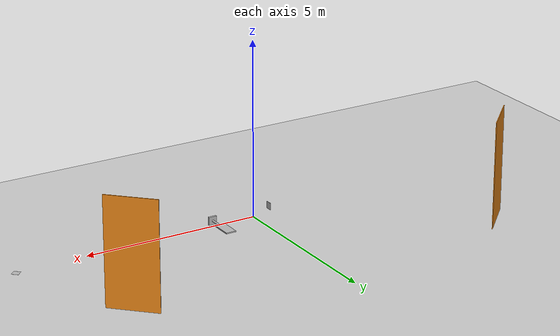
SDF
<?xml version='1.0' encoding='utf-8'?>
<sdf version="1.5">
  <world name="default">
    <include>
      <uri>model://sun</uri>
    </include>
    <include>
      <uri>model://ground_plane</uri>
      <pose>0 0 -0.001 0 0 0</pose>
    </include>
    <include>
      <uri>model://marker_aruco-1</uri>
      <pose frame="''">-0.01 0.78 0.61 0.0 -1.57079632679 0.0</pose>
    </include>
    <include>
      <uri>model://marker_aruco-2</uri>
      <pose frame="''">7.0 0.0 0.0 0.0 0.0 0.785398163397</pose>
    </include>
    <include>
      <uri>model://marker_aruco-2</uri>
      <pose frame="''">7.0 0.0 0.0 0.0 0.0 0.785398163397</pose>
    </include>
    <model name="wall_0">
      <pose frame="''">0 0 0 0 0 0</pose>
      <link name="link_0">
        <pose frame="">0 0 0 0 0 0</pose>
        <gravity>0</gravity>
        <self_collide>0</self_collide>
        <kinematic>1</kinematic>
        <visual name="wall_0_visual_0">
          <pose frame="">5.5 3.5 1.5 0 0 2.35619449019</pose>
          <geometry>
            <box>
              <size>1.41421356237 0.02 3.0</size>
            </box>
          </geometry>
          <material>
            <script>
              <uri>file://media/materials/scripts/gazebo.material</uri>
              <name>Gazebo/Orange</name>
            </script>
          </material>
          <cast_shadows>1</cast_shadows>
          <transparency>0</transparency>
        </visual>
        <collision name="wall_0_collision_0">
          <pose frame="">5.5 3.5 1.5 0 0 2.35619449019</pose>
          <geometry>
            <box>
              <size>1.41421356237 0.02 3.0</size>
            </box>
          </geometry>
        </collision>
      </link>
    </model>
    <model name="wall_1">
      <pose frame="''">0 0 0 0 0 0</pose>
      <link name="link_0">
        <pose frame="">0 0 0 0 0 0</pose>
        <gravity>0</gravity>
        <self_collide>0</self_collide>
        <kinematic>1</kinematic>
        <visual name="wall_1_visual_0">
          <pose frame="">-5.5 3.5 1.5 0 0 -2.35619449019</pose>
          <geometry>
            <box>
              <size>1.41421356237 0.02 3.0</size>
            </box>
          </geometry>
          <material>
            <script>
              <uri>file://media/materials/scripts/gazebo.material</uri>
              <name>Gazebo/Orange</name>
            </script>
          </material>
          <cast_shadows>1</cast_shadows>
          <transparency>0</transparency>
        </visual>
        <collision name="wall_1_collision_0">
          <pose frame="">-5.5 3.5 1.5 0 0 -2.35619449019</pose>
          <geometry>
            <box>
              <size>1.41421356237 0.02 3.0</size>
            </box>
          </geometry>
        </collision>
      </link>
    </model>
    <include>
      <uri>model://sign_stop</uri>
      <pose frame="''">1.77 1.05 0.6 0.0 -1.57079632679 0.0</pose>
    </include>
    <physics default="0" name="default_physics" type="ode">
      <gravity>0 0 -9.8066</gravity>
      <ode>
        <solver>
          <type>quick</type>
          <iters>20</iters>
          <sor>1.3</sor>
          <use_dynamic_moi_rescaling>0</use_dynamic_moi_rescaling>
        </solver>
        <constraints>
          <cfm>0</cfm>
          <erp>0.2</erp>
          <contact_max_correcting_vel>100</contact_max_correcting_vel>
          <contact_surface_layer>0.001</contact_surface_layer>
        </constraints>
      </ode>
      <max_step_size>0.002</max_step_size>
      <real_time_factor>1</real_time_factor>
      <real_time_update_rate>500</real_time_update_rate>
      <magnetic_field>6e-06 2.3e-05 -4.2e-05</magnetic_field>
    </physics>
  </world>
</sdf>

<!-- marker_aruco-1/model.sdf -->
<sdf version="1.5">
  <model name="marker_aruco-1">
    <pose frame="">0 0 0 0 0 0</pose>
    <link name="link_0">
      <pose frame="">0 0 0 0 0 0</pose>
      <visual name="visual">
        <geometry>
          <box>
            <size>0.197 0.197 1e-5</size>
          </box>
        </geometry>
        <material>
          <script>
            <uri>model://marker_aruco-1/materials/scripts</uri>
            <uri>model://marker_aruco-1/materials/textures</uri>
            <name>marker_aruco-1/marker</name>
          </script>
        </material>
        <pose frame="">0 0 0.001 0 0 0</pose>
        <cast_shadows>1</cast_shadows>
        <transparency>0</transparency>
      </visual>
      <collision name="collision">
        <pose frame="">0 0 0.001 0 0 0</pose>
        <geometry>
          <box>
            <size>0.197 0.197 1e-5</size>
          </box>
        </geometry>
      </collision>
      <visual name="visual_backside">
        <pose frame="">0 0 0 0 0 0</pose>
        <geometry>
          <box>
            <size>0.197 0.197 1e-5</size>
          </box>
        </geometry>
        <material>
          <script>Gazebo/Grey</script>
        </material>
      </visual>
      <collision name="collision_backside">
        <pose frame="">0 0 0 0 0 0</pose>
        <geometry>
          <box>
            <size>0.197 0.197 1e-5</size>
          </box>
        </geometry>
      </collision>
    </link>
    <static>1</static>
    <allow_auto_disable>1</allow_auto_disable>
  </model>
</sdf>

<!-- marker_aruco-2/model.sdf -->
<sdf version="1.5">
  <model name="marker_aruco-2">
    <pose frame="">0 0 0 0 0 0</pose>
    <link name="link_0">
      <pose frame="">0 0 0 0 0 0</pose>
      <visual name="visual">
        <geometry>
          <box>
            <size>0.197 0.197 1e-5</size>
          </box>
        </geometry>
        <material>
          <script>
            <uri>model://marker_aruco-2/materials/scripts</uri>
            <uri>model://marker_aruco-2/materials/textures</uri>
            <name>marker_aruco-2/marker</name>
          </script>
        </material>
        <pose frame="">0 0 0.001 0 0 0</pose>
        <cast_shadows>1</cast_shadows>
        <transparency>0</transparency>
      </visual>
      <collision name="collision">
        <pose frame="">0 0 0.001 0 0 0</pose>
        <geometry>
          <box>
            <size>0.197 0.197 1e-5</size>
          </box>
        </geometry>
      </collision>
      <visual name="visual_backside">
        <pose frame="">0 0 0 0 0 0</pose>
        <geometry>
          <box>
            <size>0.197 0.197 1e-5</size>
          </box>
        </geometry>
        <material>
          <script>Gazebo/Grey</script>
        </material>
      </visual>
      <collision name="collision_backside">
        <pose frame="">0 0 0 0 0 0</pose>
        <geometry>
          <box>
            <size>0.197 0.197 1e-5</size>
          </box>
        </geometry>
      </collision>
    </link>
    <static>1</static>
    <allow_auto_disable>1</allow_auto_disable>
  </model>
</sdf>

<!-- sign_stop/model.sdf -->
<sdf version="1.6">
  <model name="sign_stop">
    <static>true</static>
    <link name="link">
      <collision name="collision">
        <geometry>
          <mesh>
            <pose>0 0 0 0 0 0</pose>

            <scale>4.34593654932638 4.34593654932638 4.34593654932638</scale>
            <uri>model://sign_stop/meshes/sign_stop.obj</uri>
          </mesh>
        </geometry>
      </collision>
      <visual name="visual">
        <geometry>
          <mesh>
            <pose>0 0 0 0 0 0</pose>
            <scale>4.34593654932638 4.34593654932638 4.34593654932638</scale>

            <uri>model://sign_stop/meshes/sign_stop.obj</uri>
          </mesh>
        </geometry>
      </visual>
    </link>
  </model>
</sdf>
